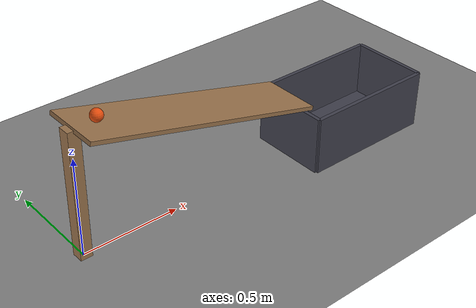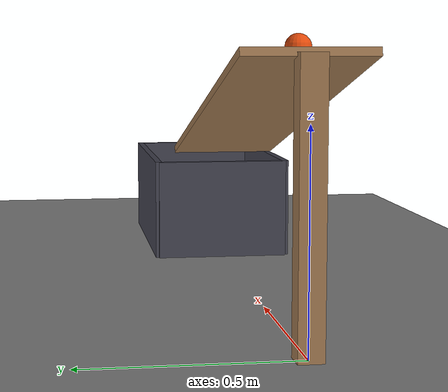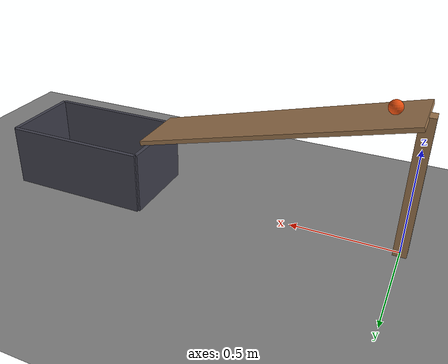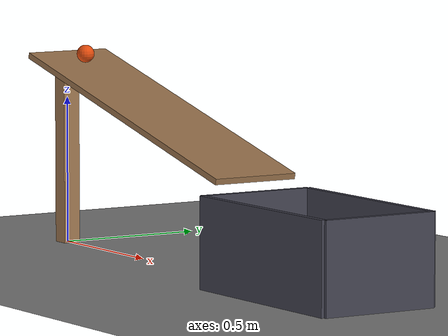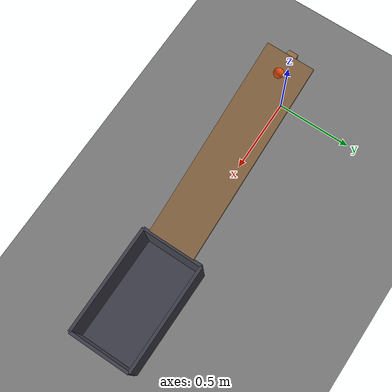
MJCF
<mujoco model="ball_rolls_down_a_ramp_into_a_cup">
  <compiler angle="radian"/>
  <option timestep="0.002"/>
  <worldbody>
    <geom name="floor" type="plane" size="5 5 0.1" friction="0.8 0.005 0.002"/>
    <body name="ramp">
      <geom name="ramp_deck" type="box" pos="0.6 0 0.495" size="0.619698 0.15 0.01" euler="0 0.252806 0" friction="0.8 0.005 0.001" solref="0.01 1" rgba="0.6 0.45 0.3 1"/>
      <geom name="ramp_leg" type="box" pos="0 0 0.325" size="0.03 0.03 0.325" friction="0.8 0.005 0.001" solref="0.01 1" rgba="0.6 0.45 0.3 1"/>
    </body>
    <body name="cup">
      <geom name="cup_base" type="box" pos="1.55 0 0.01" size="0.35 0.2 0.01" friction="0.9 0.01 0.02" solref="0.01 1" rgba="0.25 0.25 0.3 1"/>
      <geom name="cup_near_wall" type="box" pos="1.2 0 0.15" size="0.01 0.2 0.15" friction="0.9 0.01 0.02" solref="0.01 1" rgba="0.25 0.25 0.3 1"/>
      <geom name="cup_far_wall" type="box" pos="1.9 0 0.15" size="0.01 0.2 0.15" friction="0.9 0.01 0.02" solref="0.01 1" rgba="0.25 0.25 0.3 1"/>
      <geom name="cup_left_wall" type="box" pos="1.55 0.2 0.15" size="0.35 0.01 0.15" friction="0.9 0.01 0.02" solref="0.01 1" rgba="0.25 0.25 0.3 1"/>
      <geom name="cup_right_wall" type="box" pos="1.55 -0.2 0.15" size="0.35 0.01 0.15" friction="0.9 0.01 0.02" solref="0.01 1" rgba="0.25 0.25 0.3 1"/>
    </body>
    <body name="ball" pos="0.126191 0 0.658714">
      <freejoint/>
      <geom name="ball" type="sphere" pos="0 0 0" size="0.03" mass="0.15" condim="6" friction="0.8 0.005 0.001" solref="0.01 1" rgba="0.9 0.3 0.05 1"/>
    </body>
  </worldbody>
  <keyframe>
    <key name="start" qpos="0.126191 0 0.658714 1 0 0 0" qvel="0 0 0 0 0 0"/>
  </keyframe>
</mujoco>
